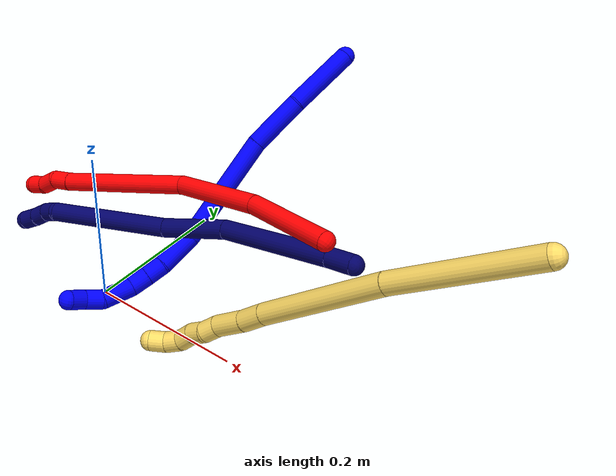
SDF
<sdf version="1.7">
 <world name="default">
  <model name="1">
   <static>0</static>
   <link name="1">
    <collision name="collision-cylinder-e_1_1_4">
     <pose>-0.006289 -0.028016 -0.034944 2.4658 -0.139505 -0.392552</pose>
     <geometry><cylinder><radius>0.0125</radius><length>0.090455</length></cylinder></geometry>
     <surface>
      <friction><ode><mu>1.16</mu><mu2>1.16</mu2><slip1>0</slip1><slip2>0</slip2></ode></friction>
      <contact><ode><kp>1e+06</kp><kd>1</kd><max_vel>0</max_vel><min_depth>0.001</min_depth></ode></contact>
     </surface>
    </collision>
    <visual name="visual-cylinder-e_1_1_4">
     <pose>-0.006289 -0.028016 -0.034944 2.4658 -0.139505 -0.392552</pose>
     <geometry><cylinder><radius>0.0125</radius><length>0.090455</length></cylinder></geometry>
     <material><ambient>0 0 1 1</ambient></material>
    </visual>
    <collision name="collision-cylinder-e_2_4_5">
     <pose>-0.021603 -0.073936 -0.100504 2.61243 -0.24916 -0.865923</pose>
     <geometry><cylinder><radius>0.0125</radius><length>0.073195</length></cylinder></geometry>
     <surface>
      <friction><ode><mu>1.16</mu><mu2>1.16</mu2><slip1>0</slip1><slip2>0</slip2></ode></friction>
      <contact><ode><kp>1e+06</kp><kd>1</kd><max_vel>0</max_vel><min_depth>0.001</min_depth></ode></contact>
     </surface>
    </collision>
    <visual name="visual-cylinder-e_2_4_5">
     <pose>-0.021603 -0.073936 -0.100504 2.61243 -0.24916 -0.865923</pose>
     <geometry><cylinder><radius>0.0125</radius><length>0.073195</length></cylinder></geometry>
     <material><ambient>0 0 1 1</ambient></material>
    </visual>
    <collision name="collision-cylinder-e_3_5_6">
     <pose>-0.037092 -0.124822 -0.198269 2.68502 -0.086198 -0.367061</pose>
     <geometry><cylinder><radius>0.0125</radius><length>0.150179</length></cylinder></geometry>
     <surface>
      <friction><ode><mu>1.16</mu><mu2>1.16</mu2><slip1>0</slip1><slip2>0</slip2></ode></friction>
      <contact><ode><kp>1e+06</kp><kd>1</kd><max_vel>0</max_vel><min_depth>0.001</min_depth></ode></contact>
     </surface>
    </collision>
    <visual name="visual-cylinder-e_3_5_6">
     <pose>-0.037092 -0.124822 -0.198269 2.68502 -0.086198 -0.367061</pose>
     <geometry><cylinder><radius>0.0125</radius><length>0.150179</length></cylinder></geometry>
     <material><ambient>0 0 1 1</ambient></material>
    </visual>
    <collision name="collision-cylinder-e_4_6_7">
     <pose>-0.042776 -0.177089 -0.283259 2.31734 0.029698 0.067914</pose>
     <geometry><cylinder><radius>0.0125</radius><length>0.052568</length></cylinder></geometry>
     <surface>
      <friction><ode><mu>1.16</mu><mu2>1.16</mu2><slip1>0</slip1><slip2>0</slip2></ode></friction>
      <contact><ode><kp>1e+06</kp><kd>1</kd><max_vel>0</max_vel><min_depth>0.001</min_depth></ode></contact>
     </surface>
    </collision>
    <visual name="visual-cylinder-e_4_6_7">
     <pose>-0.042776 -0.177089 -0.283259 2.31734 0.029698 0.067914</pose>
     <geometry><cylinder><radius>0.0125</radius><length>0.052568</length></cylinder></geometry>
     <material><ambient>0 0 1 1</ambient></material>
    </visual>
    <collision name="collision-cylinder-e_5_7_8">
     <pose>-0.044079 -0.205122 -0.308947 2.30193 -0.175489 -0.389171</pose>
     <geometry><cylinder><radius>0.0125</radius><length>0.02387</length></cylinder></geometry>
     <surface>
      <friction><ode><mu>1.16</mu><mu2>1.16</mu2><slip1>0</slip1><slip2>0</slip2></ode></friction>
      <contact><ode><kp>1e+06</kp><kd>1</kd><max_vel>0</max_vel><min_depth>0.001</min_depth></ode></contact>
     </surface>
    </collision>
    <visual name="visual-cylinder-e_5_7_8">
     <pose>-0.044079 -0.205122 -0.308947 2.30193 -0.175489 -0.389171</pose>
     <geometry><cylinder><radius>0.0125</radius><length>0.02387</length></cylinder></geometry>
     <material><ambient>0 0 1 1</ambient></material>
    </visual>
    <collision name="collision-cylinder-e_6_8_9">
     <pose>-0.048583 -0.222897 -0.324598 2.28363 -0.200114 -0.432126</pose>
     <geometry><cylinder><radius>0.0125</radius><length>0.024351</length></cylinder></geometry>
     <surface>
      <friction><ode><mu>1.16</mu><mu2>1.16</mu2><slip1>0</slip1><slip2>0</slip2></ode></friction>
      <contact><ode><kp>1e+06</kp><kd>1</kd><max_vel>0</max_vel><min_depth>0.001</min_depth></ode></contact>
     </surface>
    </collision>
    <visual name="visual-cylinder-e_6_8_9">
     <pose>-0.048583 -0.222897 -0.324598 2.28363 -0.200114 -0.432126</pose>
     <geometry><cylinder><radius>0.0125</radius><length>0.024351</length></cylinder></geometry>
     <material><ambient>0 0 1 1</ambient></material>
    </visual>
    <collision name="collision-cylinder-e_7_9_10">
     <pose>-0.054139 -0.249689 -0.340828 2.01372 -0.158133 -0.249257</pose>
     <geometry><cylinder><radius>0.0125</radius><length>0.03982</length></cylinder></geometry>
     <surface>
      <friction><ode><mu>1.16</mu><mu2>1.16</mu2><slip1>0</slip1><slip2>0</slip2></ode></friction>
      <contact><ode><kp>1e+06</kp><kd>1</kd><max_vel>0</max_vel><min_depth>0.001</min_depth></ode></contact>
     </surface>
    </collision>
    <visual name="visual-cylinder-e_7_9_10">
     <pose>-0.054139 -0.249689 -0.340828 2.01372 -0.158133 -0.249257</pose>
     <geometry><cylinder><radius>0.0125</radius><length>0.03982</length></cylinder></geometry>
     <material><ambient>0 0 1 1</ambient></material>
    </visual>
    <collision name="collision-cylinder-e_8_10_11">
     <pose>-0.062281 -0.277974 -0.350553 1.69361 -0.441259 -0.496853</pose>
     <geometry><cylinder><radius>0.0125</radius><length>0.023447</length></cylinder></geometry>
     <surface>
      <friction><ode><mu>1.16</mu><mu2>1.16</mu2><slip1>0</slip1><slip2>0</slip2></ode></friction>
      <contact><ode><kp>1e+06</kp><kd>1</kd><max_vel>0</max_vel><min_depth>0.001</min_depth></ode></contact>
     </surface>
    </collision>
    <visual name="visual-cylinder-e_8_10_11">
     <pose>-0.062281 -0.277974 -0.350553 1.69361 -0.441259 -0.496853</pose>
     <geometry><cylinder><radius>0.0125</radius><length>0.023447</length></cylinder></geometry>
     <material><ambient>0 0 1 1</ambient></material>
    </visual>
    <collision name="collision-cylinder-e_9_11_2">
     <pose>-0.067943 -0.299526 -0.351477 1.5368 -0.059298 -0.057317</pose>
     <geometry><cylinder><radius>0.0125</radius><length>0.022115</length></cylinder></geometry>
     <surface>
      <friction><ode><mu>1.16</mu><mu2>1.16</mu2><slip1>0</slip1><slip2>0</slip2></ode></friction>
      <contact><ode><kp>1e+06</kp><kd>1</kd><max_vel>0</max_vel><min_depth>0.001</min_depth></ode></contact>
     </surface>
    </collision>
    <visual name="visual-cylinder-e_9_11_2">
     <pose>-0.067943 -0.299526 -0.351477 1.5368 -0.059298 -0.057317</pose>
     <geometry><cylinder><radius>0.0125</radius><length>0.022115</length></cylinder></geometry>
     <material><ambient>0 0 1 1</ambient></material>
    </visual>
    <collision name="collision-sphere-2">
     <pose>-0.068598 -0.310558 -0.351101 0 -0 0</pose>
     <geometry><sphere><radius>0.0125</radius></sphere></geometry>
     <surface>
      <friction><ode><mu>1.16</mu><mu2>1.16</mu2><slip1>0</slip1><slip2>0</slip2></ode></friction>
      <contact><ode><kp>1e+06</kp><kd>1</kd><max_vel>0</max_vel><min_depth>0.001</min_depth></ode></contact>
     </surface>
    </collision>
    <visual name="visual-sphere-2">
     <pose>-0.068598 -0.310558 -0.351101 0 -0 0</pose>
     <geometry><sphere><radius>0.0125</radius></sphere></geometry>
     <material><ambient>0 0 1 1</ambient></material>
    </visual>
    <collision name="collision-sphere-11">
     <pose>-0.067288 -0.288495 -0.351852 0 -0 0</pose>
     <geometry><sphere><radius>0.0125</radius></sphere></geometry>
     <surface>
      <friction><ode><mu>1.16</mu><mu2>1.16</mu2><slip1>0</slip1><slip2>0</slip2></ode></friction>
      <contact><ode><kp>1e+06</kp><kd>1</kd><max_vel>0</max_vel><min_depth>0.001</min_depth></ode></contact>
     </surface>
    </collision>
    <visual name="visual-sphere-11">
     <pose>-0.067288 -0.288495 -0.351852 0 -0 0</pose>
     <geometry><sphere><radius>0.0125</radius></sphere></geometry>
     <material><ambient>0 0 1 1</ambient></material>
    </visual>
    <collision name="collision-sphere-10">
     <pose>-0.057274 -0.267453 -0.349254 0 -0 0</pose>
     <geometry><sphere><radius>0.0125</radius></sphere></geometry>
     <surface>
      <friction><ode><mu>1.16</mu><mu2>1.16</mu2><slip1>0</slip1><slip2>0</slip2></ode></friction>
      <contact><ode><kp>1e+06</kp><kd>1</kd><max_vel>0</max_vel><min_depth>0.001</min_depth></ode></contact>
     </surface>
    </collision>
    <visual name="visual-sphere-10">
     <pose>-0.057274 -0.267453 -0.349254 0 -0 0</pose>
     <geometry><sphere><radius>0.0125</radius></sphere></geometry>
     <material><ambient>0 0 1 1</ambient></material>
    </visual>
    <collision name="collision-sphere-9">
     <pose>-0.051003 -0.231924 -0.332401 0 -0 0</pose>
     <geometry><sphere><radius>0.0125</radius></sphere></geometry>
     <surface>
      <friction><ode><mu>1.16</mu><mu2>1.16</mu2><slip1>0</slip1><slip2>0</slip2></ode></friction>
      <contact><ode><kp>1e+06</kp><kd>1</kd><max_vel>0</max_vel><min_depth>0.001</min_depth></ode></contact>
     </surface>
    </collision>
    <visual name="visual-sphere-9">
     <pose>-0.051003 -0.231924 -0.332401 0 -0 0</pose>
     <geometry><sphere><radius>0.0125</radius></sphere></geometry>
     <material><ambient>0 0 1 1</ambient></material>
    </visual>
    <collision name="collision-sphere-4">
     <pose>-0.012578 -0.056031 -0.069888 0 -0 0</pose>
     <geometry><sphere><radius>0.0125</radius></sphere></geometry>
     <surface>
      <friction><ode><mu>1.16</mu><mu2>1.16</mu2><slip1>0</slip1><slip2>0</slip2></ode></friction>
      <contact><ode><kp>1e+06</kp><kd>1</kd><max_vel>0</max_vel><min_depth>0.001</min_depth></ode></contact>
     </surface>
    </collision>
    <visual name="visual-sphere-4">
     <pose>-0.012578 -0.056031 -0.069888 0 -0 0</pose>
     <geometry><sphere><radius>0.0125</radius></sphere></geometry>
     <material><ambient>0 0 1 1</ambient></material>
    </visual>
    <collision name="collision-sphere-1">
     <geometry><sphere><radius>0.0125</radius></sphere></geometry>
     <surface>
      <friction><ode><mu>1.16</mu><mu2>1.16</mu2><slip1>0</slip1><slip2>0</slip2></ode></friction>
      <contact><ode><kp>1e+06</kp><kd>1</kd><max_vel>0</max_vel><min_depth>0.001</min_depth></ode></contact>
     </surface>
    </collision>
    <visual name="visual-sphere-1">
     <geometry><sphere><radius>0.0125</radius></sphere></geometry>
     <material><ambient>0 0 1 1</ambient></material>
    </visual>
    <collision name="collision-sphere-8">
     <pose>-0.046163 -0.21387 -0.316794 0 -0 0</pose>
     <geometry><sphere><radius>0.0125</radius></sphere></geometry>
     <surface>
      <friction><ode><mu>1.16</mu><mu2>1.16</mu2><slip1>0</slip1><slip2>0</slip2></ode></friction>
      <contact><ode><kp>1e+06</kp><kd>1</kd><max_vel>0</max_vel><min_depth>0.001</min_depth></ode></contact>
     </surface>
    </collision>
    <visual name="visual-sphere-8">
     <pose>-0.046163 -0.21387 -0.316794 0 -0 0</pose>
     <geometry><sphere><radius>0.0125</radius></sphere></geometry>
     <material><ambient>0 0 1 1</ambient></material>
    </visual>
    <collision name="collision-sphere-5">
     <pose>-0.030627 -0.09184 -0.131121 0 -0 0</pose>
     <geometry><sphere><radius>0.0125</radius></sphere></geometry>
     <surface>
      <friction><ode><mu>1.16</mu><mu2>1.16</mu2><slip1>0</slip1><slip2>0</slip2></ode></friction>
      <contact><ode><kp>1e+06</kp><kd>1</kd><max_vel>0</max_vel><min_depth>0.001</min_depth></ode></contact>
     </surface>
    </collision>
    <visual name="visual-sphere-5">
     <pose>-0.030627 -0.09184 -0.131121 0 -0 0</pose>
     <geometry><sphere><radius>0.0125</radius></sphere></geometry>
     <material><ambient>0 0 1 1</ambient></material>
    </visual>
    <collision name="collision-sphere-6">
     <pose>-0.043556 -0.157804 -0.265417 0 -0 0</pose>
     <geometry><sphere><radius>0.0125</radius></sphere></geometry>
     <surface>
      <friction><ode><mu>1.16</mu><mu2>1.16</mu2><slip1>0</slip1><slip2>0</slip2></ode></friction>
      <contact><ode><kp>1e+06</kp><kd>1</kd><max_vel>0</max_vel><min_depth>0.001</min_depth></ode></contact>
     </surface>
    </collision>
    <visual name="visual-sphere-6">
     <pose>-0.043556 -0.157804 -0.265417 0 -0 0</pose>
     <geometry><sphere><radius>0.0125</radius></sphere></geometry>
     <material><ambient>0 0 1 1</ambient></material>
    </visual>
    <collision name="collision-sphere-7">
     <pose>-0.041995 -0.196374 -0.301101 0 -0 0</pose>
     <geometry><sphere><radius>0.0125</radius></sphere></geometry>
     <surface>
      <friction><ode><mu>1.16</mu><mu2>1.16</mu2><slip1>0</slip1><slip2>0</slip2></ode></friction>
      <contact><ode><kp>1e+06</kp><kd>1</kd><max_vel>0</max_vel><min_depth>0.001</min_depth></ode></contact>
     </surface>
    </collision>
    <visual name="visual-sphere-7">
     <pose>-0.041995 -0.196374 -0.301101 0 -0 0</pose>
     <geometry><sphere><radius>0.0125</radius></sphere></geometry>
     <material><ambient>0 0 1 1</ambient></material>
    </visual>
    <inertial>
     <pose>-0.034646 -0.138818 -0.200053 0 -0 0</pose>
     <mass>0.5</mass>
     <inertia>
      <ixx>0.000215</ixx>
      <ixy>0</ixy>
      <ixz>0</ixz>
      <iyy>-0.000495</iyy>
      <iyz>0</iyz>
      <izz>0.000225</izz>
     </inertia>
    </inertial>
   </link>
   <pose>0.124016 0.343744 0.240234 -0.385394 -0.113794 -0.197492</pose>
  </model>
  <model name="2">
   <static>0</static>
   <link name="2">
    <collision name="collision-cylinder-e_1_1_4">
     <pose>0.007875 -0.061013 0.004678 1.49427 0.12799 0.118575</pose>
     <geometry><cylinder><radius>0.0125</radius><length>0.123394</length></cylinder></geometry>
     <surface>
      <friction><ode><mu>1.16</mu><mu2>1.16</mu2><slip1>0</slip1><slip2>0</slip2></ode></friction>
      <contact><ode><kp>1e+06</kp><kd>1</kd><max_vel>0</max_vel><min_depth>0.001</min_depth></ode></contact>
     </surface>
    </collision>
    <visual name="visual-cylinder-e_1_1_4">
     <pose>0.007875 -0.061013 0.004678 1.49427 0.12799 0.118575</pose>
     <geometry><cylinder><radius>0.0125</radius><length>0.123394</length></cylinder></geometry>
     <material><ambient>1 0 0 1</ambient></material>
    </visual>
    <collision name="collision-cylinder-e_2_4_5">
     <pose>0.023923 -0.186225 0.003713 1.65848 0.126145 0.137685</pose>
     <geometry><cylinder><radius>0.0125</radius><length>0.129924</length></cylinder></geometry>
     <surface>
      <friction><ode><mu>1.16</mu><mu2>1.16</mu2><slip1>0</slip1><slip2>0</slip2></ode></friction>
      <contact><ode><kp>1e+06</kp><kd>1</kd><max_vel>0</max_vel><min_depth>0.001</min_depth></ode></contact>
     </surface>
    </collision>
    <visual name="visual-cylinder-e_2_4_5">
     <pose>0.023923 -0.186225 0.003713 1.65848 0.126145 0.137685</pose>
     <geometry><cylinder><radius>0.0125</radius><length>0.129924</length></cylinder></geometry>
     <material><ambient>1 0 0 1</ambient></material>
    </visual>
    <collision name="collision-cylinder-e_3_5_6">
     <pose>0.059881 -0.326784 -0.036317 1.99391 0.32035 0.489838</pose>
     <geometry><cylinder><radius>0.0125</radius><length>0.17647</length></cylinder></geometry>
     <surface>
      <friction><ode><mu>1.16</mu><mu2>1.16</mu2><slip1>0</slip1><slip2>0</slip2></ode></friction>
      <contact><ode><kp>1e+06</kp><kd>1</kd><max_vel>0</max_vel><min_depth>0.001</min_depth></ode></contact>
     </surface>
    </collision>
    <visual name="visual-cylinder-e_3_5_6">
     <pose>0.059881 -0.326784 -0.036317 1.99391 0.32035 0.489838</pose>
     <geometry><cylinder><radius>0.0125</radius><length>0.17647</length></cylinder></geometry>
     <material><ambient>1 0 0 1</ambient></material>
    </visual>
    <collision name="collision-cylinder-e_4_6_7">
     <pose>0.091829 -0.413974 -0.074291 1.89078 0.349874 0.480084</pose>
     <geometry><cylinder><radius>0.0125</radius><length>0.024288</length></cylinder></geometry>
     <surface>
      <friction><ode><mu>1.16</mu><mu2>1.16</mu2><slip1>0</slip1><slip2>0</slip2></ode></friction>
      <contact><ode><kp>1e+06</kp><kd>1</kd><max_vel>0</max_vel><min_depth>0.001</min_depth></ode></contact>
     </surface>
    </collision>
    <visual name="visual-cylinder-e_4_6_7">
     <pose>0.091829 -0.413974 -0.074291 1.89078 0.349874 0.480084</pose>
     <geometry><cylinder><radius>0.0125</radius><length>0.024288</length></cylinder></geometry>
     <material><ambient>1 0 0 1</ambient></material>
    </visual>
    <collision name="collision-cylinder-e_5_7_8">
     <pose>0.095021 -0.435229 -0.084118 2.11004 -0.079707 -0.140429</pose>
     <geometry><cylinder><radius>0.0125</radius><length>0.024376</length></cylinder></geometry>
     <surface>
      <friction><ode><mu>1.16</mu><mu2>1.16</mu2><slip1>0</slip1><slip2>0</slip2></ode></friction>
      <contact><ode><kp>1e+06</kp><kd>1</kd><max_vel>0</max_vel><min_depth>0.001</min_depth></ode></contact>
     </surface>
    </collision>
    <visual name="visual-cylinder-e_5_7_8">
     <pose>0.095021 -0.435229 -0.084118 2.11004 -0.079707 -0.140429</pose>
     <geometry><cylinder><radius>0.0125</radius><length>0.024376</length></cylinder></geometry>
     <material><ambient>1 0 0 1</ambient></material>
    </visual>
    <collision name="collision-cylinder-e_6_8_2">
     <pose>0.095841 -0.455748 -0.093671 1.88801 0.166946 0.230038</pose>
     <geometry><cylinder><radius>0.0125</radius><length>0.021548</length></cylinder></geometry>
     <surface>
      <friction><ode><mu>1.16</mu><mu2>1.16</mu2><slip1>0</slip1><slip2>0</slip2></ode></friction>
      <contact><ode><kp>1e+06</kp><kd>1</kd><max_vel>0</max_vel><min_depth>0.001</min_depth></ode></contact>
     </surface>
    </collision>
    <visual name="visual-cylinder-e_6_8_2">
     <pose>0.095841 -0.455748 -0.093671 1.88801 0.166946 0.230038</pose>
     <geometry><cylinder><radius>0.0125</radius><length>0.021548</length></cylinder></geometry>
     <material><ambient>1 0 0 1</ambient></material>
    </visual>
    <collision name="collision-sphere-2">
     <pose>0.097631 -0.465842 -0.096984 0 -0 0</pose>
     <geometry><sphere><radius>0.0125</radius></sphere></geometry>
     <surface>
      <friction><ode><mu>1.16</mu><mu2>1.16</mu2><slip1>0</slip1><slip2>0</slip2></ode></friction>
      <contact><ode><kp>1e+06</kp><kd>1</kd><max_vel>0</max_vel><min_depth>0.001</min_depth></ode></contact>
     </surface>
    </collision>
    <visual name="visual-sphere-2">
     <pose>0.097631 -0.465842 -0.096984 0 -0 0</pose>
     <geometry><sphere><radius>0.0125</radius></sphere></geometry>
     <material><ambient>1 0 0 1</ambient></material>
    </visual>
    <collision name="collision-sphere-4">
     <pose>0.01575 -0.122027 0.009357 0 -0 0</pose>
     <geometry><sphere><radius>0.0125</radius></sphere></geometry>
     <surface>
      <friction><ode><mu>1.16</mu><mu2>1.16</mu2><slip1>0</slip1><slip2>0</slip2></ode></friction>
      <contact><ode><kp>1e+06</kp><kd>1</kd><max_vel>0</max_vel><min_depth>0.001</min_depth></ode></contact>
     </surface>
    </collision>
    <visual name="visual-sphere-4">
     <pose>0.01575 -0.122027 0.009357 0 -0 0</pose>
     <geometry><sphere><radius>0.0125</radius></sphere></geometry>
     <material><ambient>1 0 0 1</ambient></material>
    </visual>
    <collision name="collision-sphere-1">
     <geometry><sphere><radius>0.0125</radius></sphere></geometry>
     <surface>
      <friction><ode><mu>1.16</mu><mu2>1.16</mu2><slip1>0</slip1><slip2>0</slip2></ode></friction>
      <contact><ode><kp>1e+06</kp><kd>1</kd><max_vel>0</max_vel><min_depth>0.001</min_depth></ode></contact>
     </surface>
    </collision>
    <visual name="visual-sphere-1">
     <geometry><sphere><radius>0.0125</radius></sphere></geometry>
     <material><ambient>1 0 0 1</ambient></material>
    </visual>
    <collision name="collision-sphere-8">
     <pose>0.094051 -0.445654 -0.090357 0 -0 0</pose>
     <geometry><sphere><radius>0.0125</radius></sphere></geometry>
     <surface>
      <friction><ode><mu>1.16</mu><mu2>1.16</mu2><slip1>0</slip1><slip2>0</slip2></ode></friction>
      <contact><ode><kp>1e+06</kp><kd>1</kd><max_vel>0</max_vel><min_depth>0.001</min_depth></ode></contact>
     </surface>
    </collision>
    <visual name="visual-sphere-8">
     <pose>0.094051 -0.445654 -0.090357 0 -0 0</pose>
     <geometry><sphere><radius>0.0125</radius></sphere></geometry>
     <material><ambient>1 0 0 1</ambient></material>
    </visual>
    <collision name="collision-sphere-5">
     <pose>0.032096 -0.250424 -0.00193 0 -0 0</pose>
     <geometry><sphere><radius>0.0125</radius></sphere></geometry>
     <surface>
      <friction><ode><mu>1.16</mu><mu2>1.16</mu2><slip1>0</slip1><slip2>0</slip2></ode></friction>
      <contact><ode><kp>1e+06</kp><kd>1</kd><max_vel>0</max_vel><min_depth>0.001</min_depth></ode></contact>
     </surface>
    </collision>
    <visual name="visual-sphere-5">
     <pose>0.032096 -0.250424 -0.00193 0 -0 0</pose>
     <geometry><sphere><radius>0.0125</radius></sphere></geometry>
     <material><ambient>1 0 0 1</ambient></material>
    </visual>
    <collision name="collision-sphere-6">
     <pose>0.087666 -0.403145 -0.070703 0 -0 0</pose>
     <geometry><sphere><radius>0.0125</radius></sphere></geometry>
     <surface>
      <friction><ode><mu>1.16</mu><mu2>1.16</mu2><slip1>0</slip1><slip2>0</slip2></ode></friction>
      <contact><ode><kp>1e+06</kp><kd>1</kd><max_vel>0</max_vel><min_depth>0.001</min_depth></ode></contact>
     </surface>
    </collision>
    <visual name="visual-sphere-6">
     <pose>0.087666 -0.403145 -0.070703 0 -0 0</pose>
     <geometry><sphere><radius>0.0125</radius></sphere></geometry>
     <material><ambient>1 0 0 1</ambient></material>
    </visual>
    <collision name="collision-sphere-7">
     <pose>0.095991 -0.424803 -0.07788 0 -0 0</pose>
     <geometry><sphere><radius>0.0125</radius></sphere></geometry>
     <surface>
      <friction><ode><mu>1.16</mu><mu2>1.16</mu2><slip1>0</slip1><slip2>0</slip2></ode></friction>
      <contact><ode><kp>1e+06</kp><kd>1</kd><max_vel>0</max_vel><min_depth>0.001</min_depth></ode></contact>
     </surface>
    </collision>
    <visual name="visual-sphere-7">
     <pose>0.095991 -0.424803 -0.07788 0 -0 0</pose>
     <geometry><sphere><radius>0.0125</radius></sphere></geometry>
     <material><ambient>1 0 0 1</ambient></material>
    </visual>
    <inertial>
     <pose>0.042518 -0.239751 -0.022445 0 -0 0</pose>
     <mass>0.5</mass>
     <inertia>
      <ixx>0.000999</ixx>
      <ixy>0</ixy>
      <ixz>0</ixz>
      <iyy>0.000111</iyy>
      <iyz>0</iyz>
      <izz>0.000554</izz>
     </inertia>
    </inertial>
   </link>
   <pose>0.260045 0.100577 0.146014 0.488238 -0.915397 -2.20452</pose>
  </model>
  <model name="5">
   <static>0</static>
   <link name="5">
    <collision name="collision-cylinder-e_1_1_4">
     <pose>-0.004756 -0.003344 -0.082389 3.10103 -0.057609 -1.91478</pose>
     <geometry><cylinder><radius>0.0125</radius><length>0.165188</length></cylinder></geometry>
     <surface>
      <friction><ode><mu>1.16</mu><mu2>1.16</mu2><slip1>0</slip1><slip2>0</slip2></ode></friction>
      <contact><ode><kp>1e+06</kp><kd>1</kd><max_vel>0</max_vel><min_depth>0.001</min_depth></ode></contact>
     </surface>
    </collision>
    <visual name="visual-cylinder-e_1_1_4">
     <pose>-0.004756 -0.003344 -0.082389 3.10103 -0.057609 -1.91478</pose>
     <geometry><cylinder><radius>0.0125</radius><length>0.165188</length></cylinder></geometry>
     <material><ambient>1 0.858824 0.4 1</ambient></material>
    </visual>
    <collision name="collision-cylinder-e_2_4_5">
     <pose>-0.020484 -0.01189 -0.243885 3.07592 -0.137542 -2.25165</pose>
     <geometry><cylinder><radius>0.0125</radius><length>0.160067</length></cylinder></geometry>
     <surface>
      <friction><ode><mu>1.16</mu><mu2>1.16</mu2><slip1>0</slip1><slip2>0</slip2></ode></friction>
      <contact><ode><kp>1e+06</kp><kd>1</kd><max_vel>0</max_vel><min_depth>0.001</min_depth></ode></contact>
     </surface>
    </collision>
    <visual name="visual-cylinder-e_2_4_5">
     <pose>-0.020484 -0.01189 -0.243885 3.07592 -0.137542 -2.25165</pose>
     <geometry><cylinder><radius>0.0125</radius><length>0.160067</length></cylinder></geometry>
     <material><ambient>1 0.858824 0.4 1</ambient></material>
    </visual>
    <collision name="collision-cylinder-e_3_5_6">
     <pose>-0.034537 -0.018156 -0.338379 3.07254 -0.197077 -2.46932</pose>
     <geometry><cylinder><radius>0.0125</radius><length>0.031457</length></cylinder></geometry>
     <surface>
      <friction><ode><mu>1.16</mu><mu2>1.16</mu2><slip1>0</slip1><slip2>0</slip2></ode></friction>
      <contact><ode><kp>1e+06</kp><kd>1</kd><max_vel>0</max_vel><min_depth>0.001</min_depth></ode></contact>
     </surface>
    </collision>
    <visual name="visual-cylinder-e_3_5_6">
     <pose>-0.034537 -0.018156 -0.338379 3.07254 -0.197077 -2.46932</pose>
     <geometry><cylinder><radius>0.0125</radius><length>0.031457</length></cylinder></geometry>
     <material><ambient>1 0.858824 0.4 1</ambient></material>
    </visual>
    <collision name="collision-cylinder-e_4_6_7">
     <pose>-0.039598 -0.020656 -0.373752 3.06992 -0.098557 -1.88445</pose>
     <geometry><cylinder><radius>0.0125</radius><length>0.040269</length></cylinder></geometry>
     <surface>
      <friction><ode><mu>1.16</mu><mu2>1.16</mu2><slip1>0</slip1><slip2>0</slip2></ode></friction>
      <contact><ode><kp>1e+06</kp><kd>1</kd><max_vel>0</max_vel><min_depth>0.001</min_depth></ode></contact>
     </surface>
    </collision>
    <visual name="visual-cylinder-e_4_6_7">
     <pose>-0.039598 -0.020656 -0.373752 3.06992 -0.098557 -1.88445</pose>
     <geometry><cylinder><radius>0.0125</radius><length>0.040269</length></cylinder></geometry>
     <material><ambient>1 0.858824 0.4 1</ambient></material>
    </visual>
    <collision name="collision-cylinder-e_5_7_8">
     <pose>-0.044223 -0.020823 -0.40378 -3.01603 -0.255473 2.23121</pose>
     <geometry><cylinder><radius>0.0125</radius><length>0.020924</length></cylinder></geometry>
     <surface>
      <friction><ode><mu>1.16</mu><mu2>1.16</mu2><slip1>0</slip1><slip2>0</slip2></ode></friction>
      <contact><ode><kp>1e+06</kp><kd>1</kd><max_vel>0</max_vel><min_depth>0.001</min_depth></ode></contact>
     </surface>
    </collision>
    <visual name="visual-cylinder-e_5_7_8">
     <pose>-0.044223 -0.020823 -0.40378 -3.01603 -0.255473 2.23121</pose>
     <geometry><cylinder><radius>0.0125</radius><length>0.020924</length></cylinder></geometry>
     <material><ambient>1 0.858824 0.4 1</ambient></material>
    </visual>
    <collision name="collision-cylinder-e_6_8_9">
     <pose>-0.047592 -0.020953 -0.42407 3.00603 -0.069993 -0.952302</pose>
     <geometry><cylinder><radius>0.0125</radius><length>0.020735</length></cylinder></geometry>
     <surface>
      <friction><ode><mu>1.16</mu><mu2>1.16</mu2><slip1>0</slip1><slip2>0</slip2></ode></friction>
      <contact><ode><kp>1e+06</kp><kd>1</kd><max_vel>0</max_vel><min_depth>0.001</min_depth></ode></contact>
     </surface>
    </collision>
    <visual name="visual-cylinder-e_6_8_9">
     <pose>-0.047592 -0.020953 -0.42407 3.00603 -0.069993 -0.952302</pose>
     <geometry><cylinder><radius>0.0125</radius><length>0.020735</length></cylinder></geometry>
     <material><ambient>1 0.858824 0.4 1</ambient></material>
    </visual>
    <collision name="collision-cylinder-e_7_9_10">
     <pose>-0.05176 -0.022309 -0.444285 -3.13748 -0.332525 3.11707</pose>
     <geometry><cylinder><radius>0.0125</radius><length>0.021091</length></cylinder></geometry>
     <surface>
      <friction><ode><mu>1.16</mu><mu2>1.16</mu2><slip1>0</slip1><slip2>0</slip2></ode></friction>
      <contact><ode><kp>1e+06</kp><kd>1</kd><max_vel>0</max_vel><min_depth>0.001</min_depth></ode></contact>
     </surface>
    </collision>
    <visual name="visual-cylinder-e_7_9_10">
     <pose>-0.05176 -0.022309 -0.444285 -3.13748 -0.332525 3.11707</pose>
     <geometry><cylinder><radius>0.0125</radius><length>0.021091</length></cylinder></geometry>
     <material><ambient>1 0.858824 0.4 1</ambient></material>
    </visual>
    <collision name="collision-cylinder-e_8_10_11">
     <pose>-0.055186 -0.020569 -0.464187 -2.97213 0.001586 -0.018677</pose>
     <geometry><cylinder><radius>0.0125</radius><length>0.020157</length></cylinder></geometry>
     <surface>
      <friction><ode><mu>1.16</mu><mu2>1.16</mu2><slip1>0</slip1><slip2>0</slip2></ode></friction>
      <contact><ode><kp>1e+06</kp><kd>1</kd><max_vel>0</max_vel><min_depth>0.001</min_depth></ode></contact>
     </surface>
    </collision>
    <visual name="visual-cylinder-e_8_10_11">
     <pose>-0.055186 -0.020569 -0.464187 -2.97213 0.001586 -0.018677</pose>
     <geometry><cylinder><radius>0.0125</radius><length>0.020157</length></cylinder></geometry>
     <material><ambient>1 0.858824 0.4 1</ambient></material>
    </visual>
    <collision name="collision-cylinder-e_9_11_2">
     <pose>-0.052344 -0.015037 -0.482978 -2.73331 0.284875 -1.21164</pose>
     <geometry><cylinder><radius>0.0125</radius><length>0.020112</length></cylinder></geometry>
     <surface>
      <friction><ode><mu>1.16</mu><mu2>1.16</mu2><slip1>0</slip1><slip2>0</slip2></ode></friction>
      <contact><ode><kp>1e+06</kp><kd>1</kd><max_vel>0</max_vel><min_depth>0.001</min_depth></ode></contact>
     </surface>
    </collision>
    <visual name="visual-cylinder-e_9_11_2">
     <pose>-0.052344 -0.015037 -0.482978 -2.73331 0.284875 -1.21164</pose>
     <geometry><cylinder><radius>0.0125</radius><length>0.020112</length></cylinder></geometry>
     <material><ambient>1 0.858824 0.4 1</ambient></material>
    </visual>
    <collision name="collision-sphere-2">
     <pose>-0.049518 -0.011206 -0.491836 0 -0 0</pose>
     <geometry><sphere><radius>0.0125</radius></sphere></geometry>
     <surface>
      <friction><ode><mu>1.16</mu><mu2>1.16</mu2><slip1>0</slip1><slip2>0</slip2></ode></friction>
      <contact><ode><kp>1e+06</kp><kd>1</kd><max_vel>0</max_vel><min_depth>0.001</min_depth></ode></contact>
     </surface>
    </collision>
    <visual name="visual-sphere-2">
     <pose>-0.049518 -0.011206 -0.491836 0 -0 0</pose>
     <geometry><sphere><radius>0.0125</radius></sphere></geometry>
     <material><ambient>1 0.858824 0.4 1</ambient></material>
    </visual>
    <collision name="collision-sphere-11">
     <pose>-0.05517 -0.018869 -0.47412 0 -0 0</pose>
     <geometry><sphere><radius>0.0125</radius></sphere></geometry>
     <surface>
      <friction><ode><mu>1.16</mu><mu2>1.16</mu2><slip1>0</slip1><slip2>0</slip2></ode></friction>
      <contact><ode><kp>1e+06</kp><kd>1</kd><max_vel>0</max_vel><min_depth>0.001</min_depth></ode></contact>
     </surface>
    </collision>
    <visual name="visual-sphere-11">
     <pose>-0.05517 -0.018869 -0.47412 0 -0 0</pose>
     <geometry><sphere><radius>0.0125</radius></sphere></geometry>
     <material><ambient>1 0.858824 0.4 1</ambient></material>
    </visual>
    <collision name="collision-sphere-10">
     <pose>-0.055202 -0.022268 -0.454253 0 -0 0</pose>
     <geometry><sphere><radius>0.0125</radius></sphere></geometry>
     <surface>
      <friction><ode><mu>1.16</mu><mu2>1.16</mu2><slip1>0</slip1><slip2>0</slip2></ode></friction>
      <contact><ode><kp>1e+06</kp><kd>1</kd><max_vel>0</max_vel><min_depth>0.001</min_depth></ode></contact>
     </surface>
    </collision>
    <visual name="visual-sphere-10">
     <pose>-0.055202 -0.022268 -0.454253 0 -0 0</pose>
     <geometry><sphere><radius>0.0125</radius></sphere></geometry>
     <material><ambient>1 0.858824 0.4 1</ambient></material>
    </visual>
    <collision name="collision-sphere-9">
     <pose>-0.048317 -0.02235 -0.434317 0 -0 0</pose>
     <geometry><sphere><radius>0.0125</radius></sphere></geometry>
     <surface>
      <friction><ode><mu>1.16</mu><mu2>1.16</mu2><slip1>0</slip1><slip2>0</slip2></ode></friction>
      <contact><ode><kp>1e+06</kp><kd>1</kd><max_vel>0</max_vel><min_depth>0.001</min_depth></ode></contact>
     </surface>
    </collision>
    <visual name="visual-sphere-9">
     <pose>-0.048317 -0.02235 -0.434317 0 -0 0</pose>
     <geometry><sphere><radius>0.0125</radius></sphere></geometry>
     <material><ambient>1 0.858824 0.4 1</ambient></material>
    </visual>
    <collision name="collision-sphere-4">
     <pose>-0.009511 -0.006687 -0.164778 0 -0 0</pose>
     <geometry><sphere><radius>0.0125</radius></sphere></geometry>
     <surface>
      <friction><ode><mu>1.16</mu><mu2>1.16</mu2><slip1>0</slip1><slip2>0</slip2></ode></friction>
      <contact><ode><kp>1e+06</kp><kd>1</kd><max_vel>0</max_vel><min_depth>0.001</min_depth></ode></contact>
     </surface>
    </collision>
    <visual name="visual-sphere-4">
     <pose>-0.009511 -0.006687 -0.164778 0 -0 0</pose>
     <geometry><sphere><radius>0.0125</radius></sphere></geometry>
     <material><ambient>1 0.858824 0.4 1</ambient></material>
    </visual>
    <collision name="collision-sphere-1">
     <geometry><sphere><radius>0.0125</radius></sphere></geometry>
     <surface>
      <friction><ode><mu>1.16</mu><mu2>1.16</mu2><slip1>0</slip1><slip2>0</slip2></ode></friction>
      <contact><ode><kp>1e+06</kp><kd>1</kd><max_vel>0</max_vel><min_depth>0.001</min_depth></ode></contact>
     </surface>
    </collision>
    <visual name="visual-sphere-1">
     <geometry><sphere><radius>0.0125</radius></sphere></geometry>
     <material><ambient>1 0.858824 0.4 1</ambient></material>
    </visual>
    <collision name="collision-sphere-8">
     <pose>-0.046867 -0.019555 -0.413823 0 -0 0</pose>
     <geometry><sphere><radius>0.0125</radius></sphere></geometry>
     <surface>
      <friction><ode><mu>1.16</mu><mu2>1.16</mu2><slip1>0</slip1><slip2>0</slip2></ode></friction>
      <contact><ode><kp>1e+06</kp><kd>1</kd><max_vel>0</max_vel><min_depth>0.001</min_depth></ode></contact>
     </surface>
    </collision>
    <visual name="visual-sphere-8">
     <pose>-0.046867 -0.019555 -0.413823 0 -0 0</pose>
     <geometry><sphere><radius>0.0125</radius></sphere></geometry>
     <material><ambient>1 0.858824 0.4 1</ambient></material>
    </visual>
    <collision name="collision-sphere-5">
     <pose>-0.031458 -0.017092 -0.322992 0 -0 0</pose>
     <geometry><sphere><radius>0.0125</radius></sphere></geometry>
     <surface>
      <friction><ode><mu>1.16</mu><mu2>1.16</mu2><slip1>0</slip1><slip2>0</slip2></ode></friction>
      <contact><ode><kp>1e+06</kp><kd>1</kd><max_vel>0</max_vel><min_depth>0.001</min_depth></ode></contact>
     </surface>
    </collision>
    <visual name="visual-sphere-5">
     <pose>-0.031458 -0.017092 -0.322992 0 -0 0</pose>
     <geometry><sphere><radius>0.0125</radius></sphere></geometry>
     <material><ambient>1 0.858824 0.4 1</ambient></material>
    </visual>
    <collision name="collision-sphere-6">
     <pose>-0.037617 -0.019221 -0.353766 0 -0 0</pose>
     <geometry><sphere><radius>0.0125</radius></sphere></geometry>
     <surface>
      <friction><ode><mu>1.16</mu><mu2>1.16</mu2><slip1>0</slip1><slip2>0</slip2></ode></friction>
      <contact><ode><kp>1e+06</kp><kd>1</kd><max_vel>0</max_vel><min_depth>0.001</min_depth></ode></contact>
     </surface>
    </collision>
    <visual name="visual-sphere-6">
     <pose>-0.037617 -0.019221 -0.353766 0 -0 0</pose>
     <geometry><sphere><radius>0.0125</radius></sphere></geometry>
     <material><ambient>1 0.858824 0.4 1</ambient></material>
    </visual>
    <collision name="collision-sphere-7">
     <pose>-0.041579 -0.02209 -0.393737 0 -0 0</pose>
     <geometry><sphere><radius>0.0125</radius></sphere></geometry>
     <surface>
      <friction><ode><mu>1.16</mu><mu2>1.16</mu2><slip1>0</slip1><slip2>0</slip2></ode></friction>
      <contact><ode><kp>1e+06</kp><kd>1</kd><max_vel>0</max_vel><min_depth>0.001</min_depth></ode></contact>
     </surface>
    </collision>
    <visual name="visual-sphere-7">
     <pose>-0.041579 -0.02209 -0.393737 0 -0 0</pose>
     <geometry><sphere><radius>0.0125</radius></sphere></geometry>
     <material><ambient>1 0.858824 0.4 1</ambient></material>
    </visual>
    <inertial>
     <pose>-0.023829 -0.011832 -0.24805 0 -0 0</pose>
     <mass>0.5</mass>
     <inertia>
      <ixx>-0.000991</ixx>
      <ixy>0</ixy>
      <ixz>0</ixz>
      <iyy>-0.000282</iyy>
      <iyz>0</iyz>
      <izz>7.1e-05</izz>
     </inertia>
    </inertial>
   </link>
   <pose>0.517006 0.041901 0.287795 0.528855 -0.99356 2.71804</pose>
  </model>
  <model name="7">
   <static>0</static>
   <link name="7">
    <collision name="collision-cylinder-e_1_1_4">
     <pose>-0.015113 0.001416 -0.007111 -2.94499 -1.12349 2.83074</pose>
     <geometry><cylinder><radius>0.0125</radius><length>0.033525</length></cylinder></geometry>
     <surface>
      <friction><ode><mu>1.16</mu><mu2>1.16</mu2><slip1>0</slip1><slip2>0</slip2></ode></friction>
      <contact><ode><kp>1e+06</kp><kd>1</kd><max_vel>0</max_vel><min_depth>0.001</min_depth></ode></contact>
     </surface>
    </collision>
    <visual name="visual-cylinder-e_1_1_4">
     <pose>-0.015113 0.001416 -0.007111 -2.94499 -1.12349 2.83074</pose>
     <geometry><cylinder><radius>0.0125</radius><length>0.033525</length></cylinder></geometry>
     <material><ambient>0.003922 0 0.403922 1</ambient></material>
    </visual>
    <collision name="collision-cylinder-e_2_4_5">
     <pose>-0.100659 0.006532 -0.046844 -3.02868 -1.13461 2.96465</pose>
     <geometry><cylinder><radius>0.0125</radius><length>0.155418</length></cylinder></geometry>
     <surface>
      <friction><ode><mu>1.16</mu><mu2>1.16</mu2><slip1>0</slip1><slip2>0</slip2></ode></friction>
      <contact><ode><kp>1e+06</kp><kd>1</kd><max_vel>0</max_vel><min_depth>0.001</min_depth></ode></contact>
     </surface>
    </collision>
    <visual name="visual-cylinder-e_2_4_5">
     <pose>-0.100659 0.006532 -0.046844 -3.02868 -1.13461 2.96465</pose>
     <geometry><cylinder><radius>0.0125</radius><length>0.155418</length></cylinder></geometry>
     <material><ambient>0.003922 0 0.403922 1</ambient></material>
    </visual>
    <collision name="collision-cylinder-e_3_5_6">
     <pose>-0.213908 0.005108 -0.089746 2.67931 -1.3087 -2.54622</pose>
     <geometry><cylinder><radius>0.0125</radius><length>0.088659</length></cylinder></geometry>
     <surface>
      <friction><ode><mu>1.16</mu><mu2>1.16</mu2><slip1>0</slip1><slip2>0</slip2></ode></friction>
      <contact><ode><kp>1e+06</kp><kd>1</kd><max_vel>0</max_vel><min_depth>0.001</min_depth></ode></contact>
     </surface>
    </collision>
    <visual name="visual-cylinder-e_3_5_6">
     <pose>-0.213908 0.005108 -0.089746 2.67931 -1.3087 -2.54622</pose>
     <geometry><cylinder><radius>0.0125</radius><length>0.088659</length></cylinder></geometry>
     <material><ambient>0.003922 0 0.403922 1</ambient></material>
    </visual>
    <collision name="collision-cylinder-e_4_6_7">
     <pose>-0.337254 0.00096 -0.107146 -3.00551 -1.48181 2.99287</pose>
     <geometry><cylinder><radius>0.0125</radius><length>0.161702</length></cylinder></geometry>
     <surface>
      <friction><ode><mu>1.16</mu><mu2>1.16</mu2><slip1>0</slip1><slip2>0</slip2></ode></friction>
      <contact><ode><kp>1e+06</kp><kd>1</kd><max_vel>0</max_vel><min_depth>0.001</min_depth></ode></contact>
     </surface>
    </collision>
    <visual name="visual-cylinder-e_4_6_7">
     <pose>-0.337254 0.00096 -0.107146 -3.00551 -1.48181 2.99287</pose>
     <geometry><cylinder><radius>0.0125</radius><length>0.161702</length></cylinder></geometry>
     <material><ambient>0.003922 0 0.403922 1</ambient></material>
    </visual>
    <collision name="collision-cylinder-e_5_7_8">
     <pose>-0.426617 0.000162 -0.118848 2.77245 -1.06297 -2.52663</pose>
     <geometry><cylinder><radius>0.0125</radius><length>0.020215</length></cylinder></geometry>
     <surface>
      <friction><ode><mu>1.16</mu><mu2>1.16</mu2><slip1>0</slip1><slip2>0</slip2></ode></friction>
      <contact><ode><kp>1e+06</kp><kd>1</kd><max_vel>0</max_vel><min_depth>0.001</min_depth></ode></contact>
     </surface>
    </collision>
    <visual name="visual-cylinder-e_5_7_8">
     <pose>-0.426617 0.000162 -0.118848 2.77245 -1.06297 -2.52663</pose>
     <geometry><cylinder><radius>0.0125</radius><length>0.020215</length></cylinder></geometry>
     <material><ambient>0.003922 0 0.403922 1</ambient></material>
    </visual>
    <collision name="collision-cylinder-e_6_8_9">
     <pose>-0.444201 -0.006067 -0.126077 2.10661 -1.03626 -1.57228</pose>
     <geometry><cylinder><radius>0.0125</radius><length>0.020342</length></cylinder></geometry>
     <surface>
      <friction><ode><mu>1.16</mu><mu2>1.16</mu2><slip1>0</slip1><slip2>0</slip2></ode></friction>
      <contact><ode><kp>1e+06</kp><kd>1</kd><max_vel>0</max_vel><min_depth>0.001</min_depth></ode></contact>
     </surface>
    </collision>
    <visual name="visual-cylinder-e_6_8_9">
     <pose>-0.444201 -0.006067 -0.126077 2.10661 -1.03626 -1.57228</pose>
     <geometry><cylinder><radius>0.0125</radius><length>0.020342</length></cylinder></geometry>
     <material><ambient>0.003922 0 0.403922 1</ambient></material>
    </visual>
    <collision name="collision-cylinder-e_7_9_2">
     <pose>-0.462126 -0.014049 -0.130918 2.12753 -1.14557 -1.71954</pose>
     <geometry><cylinder><radius>0.0125</radius><length>0.020141</length></cylinder></geometry>
     <surface>
      <friction><ode><mu>1.16</mu><mu2>1.16</mu2><slip1>0</slip1><slip2>0</slip2></ode></friction>
      <contact><ode><kp>1e+06</kp><kd>1</kd><max_vel>0</max_vel><min_depth>0.001</min_depth></ode></contact>
     </surface>
    </collision>
    <visual name="visual-cylinder-e_7_9_2">
     <pose>-0.462126 -0.014049 -0.130918 2.12753 -1.14557 -1.71954</pose>
     <geometry><cylinder><radius>0.0125</radius><length>0.020141</length></cylinder></geometry>
     <material><ambient>0.003922 0 0.403922 1</ambient></material>
    </visual>
    <collision name="collision-sphere-2">
     <pose>-0.4713 -0.017576 -0.133113 0 -0 0</pose>
     <geometry><sphere><radius>0.0125</radius></sphere></geometry>
     <surface>
      <friction><ode><mu>1.16</mu><mu2>1.16</mu2><slip1>0</slip1><slip2>0</slip2></ode></friction>
      <contact><ode><kp>1e+06</kp><kd>1</kd><max_vel>0</max_vel><min_depth>0.001</min_depth></ode></contact>
     </surface>
    </collision>
    <visual name="visual-sphere-2">
     <pose>-0.4713 -0.017576 -0.133113 0 -0 0</pose>
     <geometry><sphere><radius>0.0125</radius></sphere></geometry>
     <material><ambient>0.003922 0 0.403922 1</ambient></material>
    </visual>
    <collision name="collision-sphere-9">
     <pose>-0.452953 -0.010522 -0.128723 0 -0 0</pose>
     <geometry><sphere><radius>0.0125</radius></sphere></geometry>
     <surface>
      <friction><ode><mu>1.16</mu><mu2>1.16</mu2><slip1>0</slip1><slip2>0</slip2></ode></friction>
      <contact><ode><kp>1e+06</kp><kd>1</kd><max_vel>0</max_vel><min_depth>0.001</min_depth></ode></contact>
     </surface>
    </collision>
    <visual name="visual-sphere-9">
     <pose>-0.452953 -0.010522 -0.128723 0 -0 0</pose>
     <geometry><sphere><radius>0.0125</radius></sphere></geometry>
     <material><ambient>0.003922 0 0.403922 1</ambient></material>
    </visual>
    <collision name="collision-sphere-4">
     <pose>-0.030226 0.002832 -0.014221 0 -0 0</pose>
     <geometry><sphere><radius>0.0125</radius></sphere></geometry>
     <surface>
      <friction><ode><mu>1.16</mu><mu2>1.16</mu2><slip1>0</slip1><slip2>0</slip2></ode></friction>
      <contact><ode><kp>1e+06</kp><kd>1</kd><max_vel>0</max_vel><min_depth>0.001</min_depth></ode></contact>
     </surface>
    </collision>
    <visual name="visual-sphere-4">
     <pose>-0.030226 0.002832 -0.014221 0 -0 0</pose>
     <geometry><sphere><radius>0.0125</radius></sphere></geometry>
     <material><ambient>0.003922 0 0.403922 1</ambient></material>
    </visual>
    <collision name="collision-sphere-1">
     <geometry><sphere><radius>0.0125</radius></sphere></geometry>
     <surface>
      <friction><ode><mu>1.16</mu><mu2>1.16</mu2><slip1>0</slip1><slip2>0</slip2></ode></friction>
      <contact><ode><kp>1e+06</kp><kd>1</kd><max_vel>0</max_vel><min_depth>0.001</min_depth></ode></contact>
     </surface>
    </collision>
    <visual name="visual-sphere-1">
     <geometry><sphere><radius>0.0125</radius></sphere></geometry>
     <material><ambient>0.003922 0 0.403922 1</ambient></material>
    </visual>
    <collision name="collision-sphere-8">
     <pose>-0.435449 -0.001612 -0.123432 0 -0 0</pose>
     <geometry><sphere><radius>0.0125</radius></sphere></geometry>
     <surface>
      <friction><ode><mu>1.16</mu><mu2>1.16</mu2><slip1>0</slip1><slip2>0</slip2></ode></friction>
      <contact><ode><kp>1e+06</kp><kd>1</kd><max_vel>0</max_vel><min_depth>0.001</min_depth></ode></contact>
     </surface>
    </collision>
    <visual name="visual-sphere-8">
     <pose>-0.435449 -0.001612 -0.123432 0 -0 0</pose>
     <geometry><sphere><radius>0.0125</radius></sphere></geometry>
     <material><ambient>0.003922 0 0.403922 1</ambient></material>
    </visual>
    <collision name="collision-sphere-5">
     <pose>-0.171092 0.010231 -0.079466 0 -0 0</pose>
     <geometry><sphere><radius>0.0125</radius></sphere></geometry>
     <surface>
      <friction><ode><mu>1.16</mu><mu2>1.16</mu2><slip1>0</slip1><slip2>0</slip2></ode></friction>
      <contact><ode><kp>1e+06</kp><kd>1</kd><max_vel>0</max_vel><min_depth>0.001</min_depth></ode></contact>
     </surface>
    </collision>
    <visual name="visual-sphere-5">
     <pose>-0.171092 0.010231 -0.079466 0 -0 0</pose>
     <geometry><sphere><radius>0.0125</radius></sphere></geometry>
     <material><ambient>0.003922 0 0.403922 1</ambient></material>
    </visual>
    <collision name="collision-sphere-6">
     <pose>-0.256723 -1.4e-05 -0.100027 0 -0 0</pose>
     <geometry><sphere><radius>0.0125</radius></sphere></geometry>
     <surface>
      <friction><ode><mu>1.16</mu><mu2>1.16</mu2><slip1>0</slip1><slip2>0</slip2></ode></friction>
      <contact><ode><kp>1e+06</kp><kd>1</kd><max_vel>0</max_vel><min_depth>0.001</min_depth></ode></contact>
     </surface>
    </collision>
    <visual name="visual-sphere-6">
     <pose>-0.256723 -1.4e-05 -0.100027 0 -0 0</pose>
     <geometry><sphere><radius>0.0125</radius></sphere></geometry>
     <material><ambient>0.003922 0 0.403922 1</ambient></material>
    </visual>
    <collision name="collision-sphere-7">
     <pose>-0.417785 0.001935 -0.114264 0 -0 0</pose>
     <geometry><sphere><radius>0.0125</radius></sphere></geometry>
     <surface>
      <friction><ode><mu>1.16</mu><mu2>1.16</mu2><slip1>0</slip1><slip2>0</slip2></ode></friction>
      <contact><ode><kp>1e+06</kp><kd>1</kd><max_vel>0</max_vel><min_depth>0.001</min_depth></ode></contact>
     </surface>
    </collision>
    <visual name="visual-sphere-7">
     <pose>-0.417785 0.001935 -0.114264 0 -0 0</pose>
     <geometry><sphere><radius>0.0125</radius></sphere></geometry>
     <material><ambient>0.003922 0 0.403922 1</ambient></material>
    </visual>
    <inertial>
     <pose>-0.233235 0.002536 -0.08081 0 -0 0</pose>
     <mass>0.5</mass>
     <inertia>
      <ixx>-0.000198</ixx>
      <ixy>0</ixy>
      <ixz>0</ixz>
      <iyy>0.000762</iyy>
      <iyz>0</iyz>
      <izz>0.000692</izz>
     </inertia>
    </inertial>
   </link>
   <pose>0.296583 0.105532 0.126922 1.08318 -0.057987 0.403763</pose>
  </model>
 </world>
</sdf>
